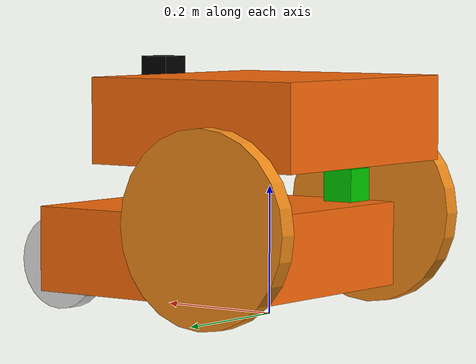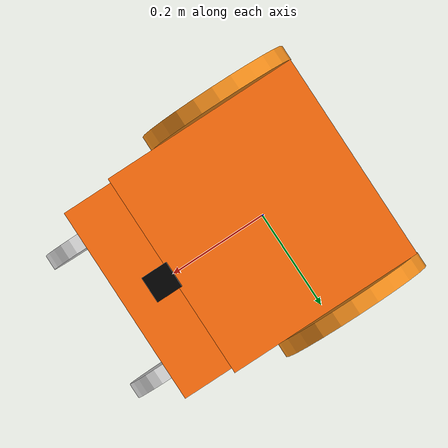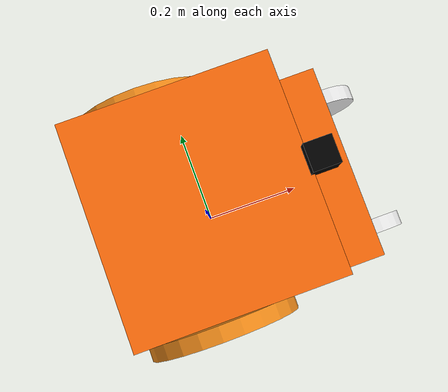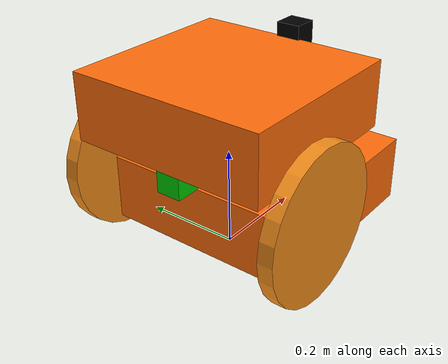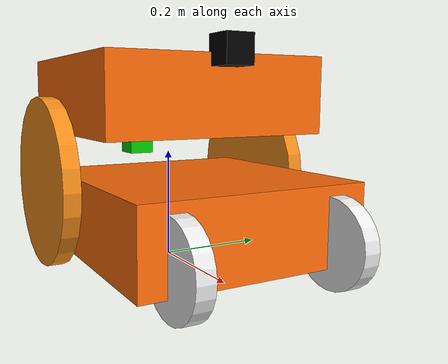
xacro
<?xml version="1.0"?>
<!-- Revolute-Revolute Manipulator -->
<robot name="orne_alpha" xmlns:xacro="http://ros.org/wiki/xacro">
  <!-- Constants for robot dimensions -->
  <xacro:property name="PI" value="3.1415926535897931"/>

  <!-- Import Rviz colors -->
  <xacro:include filename="$(find orne_description)/urdf/material_colors.xacro" />
  <xacro:include filename="$(find orne_description)/urdf/alpha/orne_alpha.gazebo"/>
  <xacro:include filename="$(find orne_description)/urdf/sensors/imu.urdf.xacro"/>
  <xacro:include filename="$(find orne_description)/urdf/sensors/hokuyo.urdf.xacro"/>
  <!--Base footprint -->
  <link name="base_footprint" />

  <joint name="base_joint" type="fixed">
    <origin xyz="0 0 0" />
    <parent link="base_footprint" />
    <child link="base_link" />
  </joint>

  <!-- Base Link -->
  <link name="base_link">
    <collision>
      <origin xyz="0 0 0.1" rpy="0 0 0"/>
      <geometry>
	       <box size=".40 .40 .134"/>
      </geometry>
    </collision>

    <visual>
      <origin xyz="0.1 0 0.1" rpy="0 0 0"/>
      <geometry>
	       <box size=".40 .40 .134"/>
      </geometry>
      <material name="orange"/>
    </visual>

    <collision>
      <origin xyz="0.005 0 0.300" rpy="0 0 0"/>
      <geometry>
	       <box size=".376 .40 .134"/>
      </geometry>
    </collision>

    <visual>
      <origin xyz="0.005 0 0.305" rpy="0 0 0"/>
      <geometry>
	       <box size=".376 .40 .134"/>
      </geometry>
      <material name="orange"/>
    </visual>

    <collision name="collision">
      <origin xyz="0.301 -0.141 0.075" rpy="0 1.5707 1.5707"/>
      <geometry>
        <cylinder  length="0.03" radius="0.075"/>
      </geometry>
    </collision>
    <visual name="visual">
      <origin xyz="0.301 -0.141 0.075" rpy="0 1.5707 1.5707"/>
      <geometry>
        <cylinder  length="0.03" radius="0.075"/>
      </geometry>
    </visual>

    <collision name="collision">
      <origin xyz="0.301 0.141 0.075" rpy="0 1.5707 1.5707"/>
      <geometry>
        <cylinder  length="0.03" radius="0.075"/>
      </geometry>
    </collision>
    <visual name="visual">
      <origin xyz="0.301 0.141 0.075" rpy="0 1.5707 1.5707"/>
      <geometry>
        <cylinder  length="0.03" radius="0.075"/>
      </geometry>
    </visual>

    <inertial>
       <mass value="15" />
       <origin xyz="0 0 0" rpy="0 0 0"/>
       <inertia ixx="1" ixy="0" ixz="0" iyy="1" iyz="0" izz="1" />
    </inertial>
  </link>

  <!-- Setting for imu -->
  <xacro:sensor_imu name="imu" parent="base_link" size="0.05 0.05 0.05">
      <origin xyz="-0.145 0.0 0.21" rpy="0 0 0"/>
  </xacro:sensor_imu>

  <!-- Setting for levelly fixed 2D URG -->
  <xacro:sensor_hokuyo name="hokuyo" parent="base_link" size="0.05 0.05 0.05">
      <origin xyz="0.212 0 0.375" rpy="0 0 0"/>
  </xacro:sensor_hokuyo>

  <link name="left_wheel">
    <collision name="collision">
      <origin xyz="0 0.0 0" rpy="0 0 0"/>
      <geometry>
         <cylinder  length="0.03" radius="0.151"/>
      </geometry>
    </collision>
    <visual name="visual">
      <origin xyz="0 0.0 0" rpy="0 0 0"/>
      <geometry>
        <cylinder  length="0.03" radius="0.151"/>
      </geometry>
    </visual>
    <inertial>
      <mass value="1" />
      <origin xyz="0 0.0 0"/>
      <inertia ixx="0.1" ixy="0" ixz="0" iyy="0.1" iyz="0" izz="0.1" />
    </inertial>
  </link>

  <joint type="revolute" name="left_wheel_joint">
    <origin xyz="-0.045 0.223 0.1518" rpy="-1.57 0 0"/>
    <child link="left_wheel"></child>
    <parent link="base_link"></parent>
    <axis xyz="0 0 1"/>
    <limit effort="100" velocity="100.0"  lower="-5000" upper="5000" />
  </joint>

  <link name="right_wheel">
    <collision name="collision">
      <origin xyz="0 0.0 0" rpy="0 0 0"/>
      <geometry>
         <cylinder  length="0.03" radius="0.151"/>
      </geometry>
    </collision>
    <visual name="visual">
      <origin xyz="0 0.0 0" rpy="0 0 0"/>
      <geometry>
        <cylinder  length="0.03" radius="0.151"/>
      </geometry>
    </visual>
    <inertial>
      <mass value="1" />
      <origin xyz="0 0.0 0"/>
      <inertia ixx="0.1" ixy="0" ixz="0" iyy="0.1" iyz="0" izz="0.1" />
    </inertial>
  </link>

  <joint type="revolute" name="right_wheel_joint">
    <origin xyz="-0.045 -0.223 0.1518" rpy="-1.57 0 0"/>
    <child link="right_wheel"></child>
    <parent link="base_link"></parent>
    <axis xyz="0 0 1"/>
    <limit effort="100" velocity="100.0"  lower="-5000" upper="5000" />
  </joint>

  <transmission name="tran1">
    <type>transmission_interface/SimpleTransmission</type>
    <joint name="left_wheel_joint">
      <hardwareInterface>VelocityJointInterface</hardwareInterface>
    </joint>
  <actuator name="left_motor">
      <hardwareInterface>VelocityJointInterface</hardwareInterface>
      <mechanicalReduction>1</mechanicalReduction>
    </actuator>
  </transmission>

  <transmission name="tran2">
    <type>transmission_interface/SimpleTransmission</type>
    <joint name="right_wheel_joint">
      <hardwareInterface>VelocityJointInterface</hardwareInterface>
    </joint>
  <actuator name="right_motor">
      <hardwareInterface>VelocityJointInterface</hardwareInterface>
      <mechanicalReduction>1</mechanicalReduction>
    </actuator>
  </transmission>
</robot>

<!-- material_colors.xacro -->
<robot>
  <material name="black">
    <color rgba="0.0 0.0 0.0 1.0"/>
  </material>
  <material name="brown">
    <color rgba="${222/255} ${207/255} ${195/255} 1.0"/>
  </material>
  <material name="red">
    <color rgba="0.8 0.0 0.0 1.0"/>
  </material>
  <material name="orange">
    <color rgba="${255/255} ${108/255} ${10/255} 1.0"/>
  </material>
  <material name="yellow">
    <color rgba="0.8 0.8 0.0 1.0"/>
  </material>
  <material name="green">
    <color rgba="0.0 0.8 0.0 1.0"/>
  </material>
  <material name="cyan">
    <color rgba="0.0 0.8 0.8 1.0"/>
  </material>
  <material name="bule">
    <color rgba="0.0 0.0 0.8 1.0"/>
  </material>
  <material name="purple">
    <color rgba="0.8 0.0 0.8 1.0"/>
  </material>
  <material name="gray">
    <color rgba="0.5 0.5 0.5 1.0"/>
  </material>
  <material name="white">
    <color rgba="1.0 1.0 1.0 1.0"/>
  </material>
</robot>

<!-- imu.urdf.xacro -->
<robot xmlns:xacro="http://ros.org/wiki/xacro" xmlns:controller="http://playerstage.sourceforge.net/gazebo/xmlschema/#controller" xmlns:interface="http://playerstage.sourceforge.net/gazebo/xmlschema/#interface" name="sensor_imu">

  <xacro:macro name="sensor_imu" params="name parent *origin size">
    <joint name="${name}_joint" type="fixed">
      <axis xyz="1 0 0"/>
      <xacro:insert_block name="origin"/>
      <parent link="${parent}"/>
      <child link="${name}_link"/>
    </joint>
    <link name="${name}_link">
      <inertial>
        <origin xyz="0.0 0.0 0.0" rpy="0.0 0.0 0.0"/>
        <mass value="0.005"/>
        <inertia ixx="0.001" ixy="0.0" ixz="0.0" iyy="0.001" iyz="0.0" izz="0.001"/>
      </inertial>
      <visual>
        <origin rpy="0 0 0" xyz="0 0 0"/>
        <geometry>
          <box size="${size}"/>
        </geometry>
        <material name="green"/>
      </visual>
    </link>
  </xacro:macro>
</robot>

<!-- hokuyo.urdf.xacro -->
<robot xmlns:xacro="http://ros.org/wiki/xacro" xmlns:controller="http://playerstage.sourceforge.net/gazebo/xmlschema/#controller" xmlns:interface="http://playerstage.sourceforge.net/gazebo/xmlschema/#interface" name="sensor_hokuyo">
  <xacro:macro name="sensor_hokuyo" params="name parent *origin size">
    <joint name="${name}_joint" type="fixed">
      <axis xyz="1 0 0"/>
      <xacro:insert_block name="origin"/>
      <parent link="${parent}"/>
      <child link="${name}_link"/>
    </joint>
    <link name="${name}_link">
      <inertial>
        <origin xyz="0.0 0.0 0.0" rpy="0.0 0.0 0.0"/>
        <mass value="0.2"/>
        <inertia ixx="0.005" ixy="0.0" ixz="0.0" iyy="0.005" iyz="0.0" izz="0.005"/>
      </inertial>
      <visual>
        <origin rpy="0 0 0" xyz="0 0 0"/>
        <geometry>
          <box size="${size}"/>
        </geometry>
        <material name="black"/>
      </visual>
    </link>
  </xacro:macro>
</robot>
